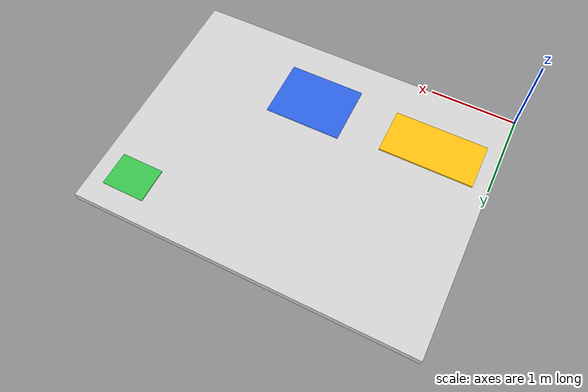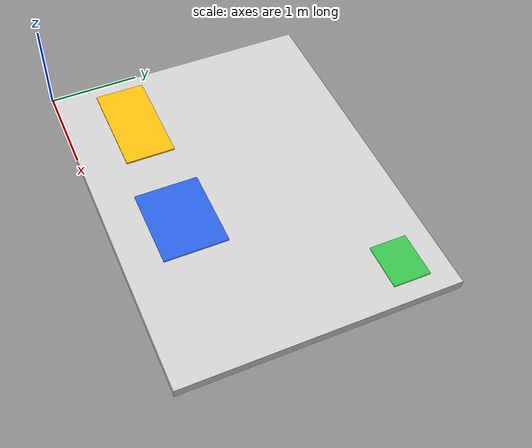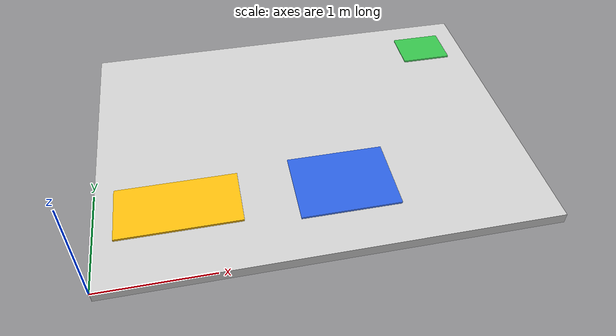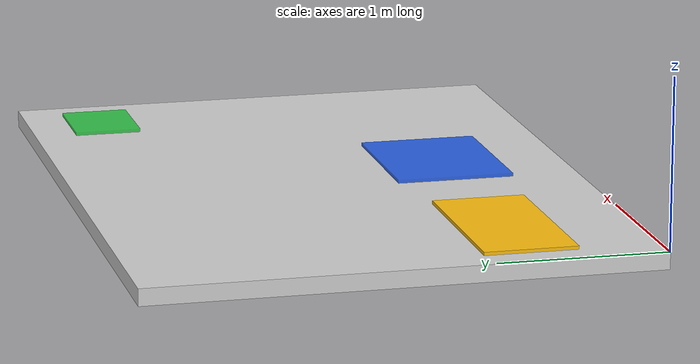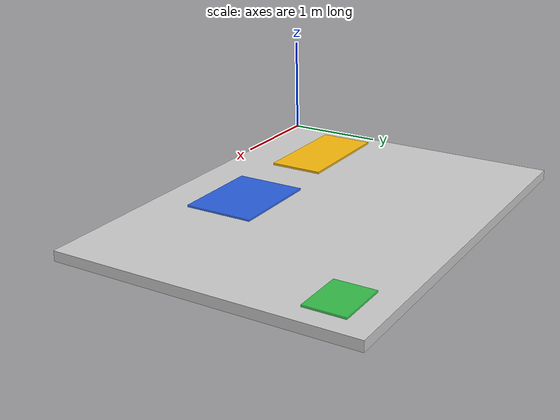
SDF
<?xml version="1.0" ?>
<sdf version="1.9">
  <world name="warehouse_l_shape">
    <gravity>0 0 -9.8</gravity>
    <physics name="1ms" type="gz-physics-dartsim">
      <max_step_size>0.005</max_step_size>
      <real_time_factor>1.0</real_time_factor>
    </physics>
    <plugin filename="gz-sim-physics-system" name="gz::sim::systems::Physics"/>
    <plugin filename="gz-sim-user-commands-system" name="gz::sim::systems::UserCommands"/>
    <plugin filename="gz-sim-scene-broadcaster-system" name="gz::sim::systems::SceneBroadcaster"/>
    <light type="directional" name="sun"><pose>2 1.5 8 0 0 0</pose><direction>-0.5 0.1 -1</direction></light>
    <!-- Coordinate convention: lower-left corner is (0, 0); test map is 4 m x 3 m. -->
    <model name="floor"><static>true</static><pose>2 1.5 -0.05 0 0 0</pose><link name="link"><collision name="collision"><geometry><box><size>4 3 0.1</size></box></geometry></collision><visual name="visual"><geometry><box><size>4 3 0.1</size></box></geometry><material><diffuse>0.82 0.82 0.82 1</diffuse></material></visual></link></model>

    <!-- Yellow: robot standby / return. Blue: cargo loading. Green: destination. -->
    <model name="standby_zone"><static>true</static><pose>0.72 0.75 0.011 0 0 0</pose><link name="link"><visual name="visual"><geometry><box><size>1.10 0.55 0.02</size></box></geometry><material><diffuse>1 0.75 0.05 0.9</diffuse></material></visual></link></model>
    <model name="loading_zone"><static>true</static><pose>2.20 0.75 0.011 0 0 0</pose><link name="link"><visual name="visual"><geometry><box><size>0.90 0.70 0.02</size></box></geometry><material><diffuse>0.1 0.35 0.95 0.85</diffuse></material></visual></link></model>
    <model name="destination_zone"><static>true</static><pose>3.55 2.55 0.011 0 0 0</pose><link name="link"><visual name="visual"><geometry><box><size>0.50 0.40 0.02</size></box></geometry><material><diffuse>0.15 0.8 0.25 0.85</diffuse></material></visual></link></model>

  </world>
</sdf>
